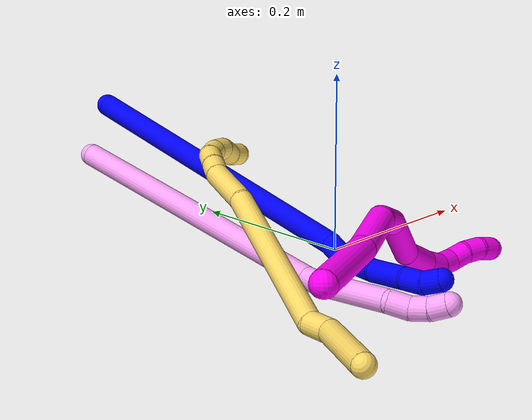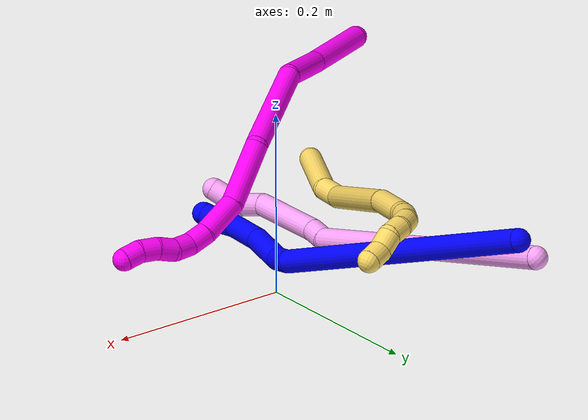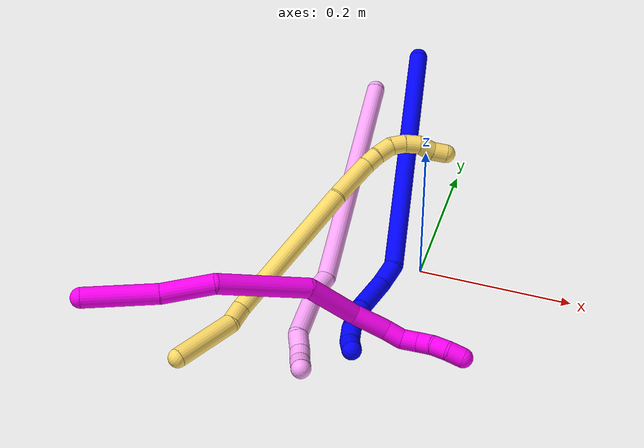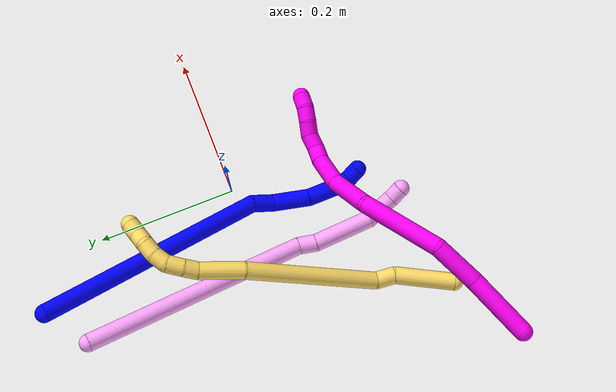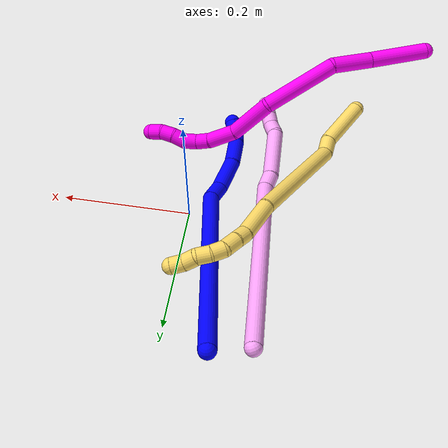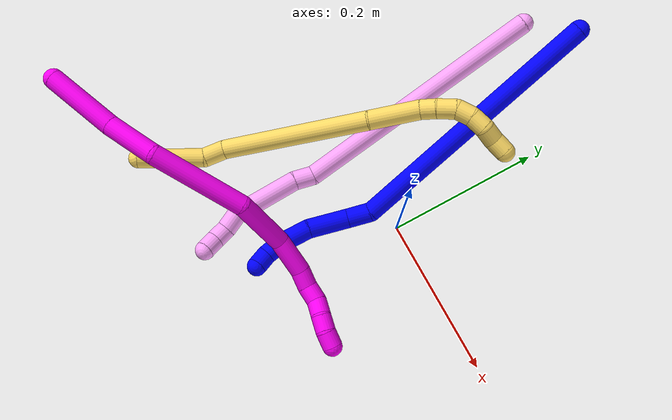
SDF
<sdf version="1.7">
 <world name="default">
  <model name="1">
   <static>0</static>
   <link name="1">
    <collision name="collision-cylinder-e_1_1_4">
     <pose>0.025386 -0.163034 0.0253 1.41684 0.152669 0.130872</pose>
     <geometry><cylinder><radius>0.0125</radius><length>0.333854</length></cylinder></geometry>
     <surface>
      <friction><ode><mu>1.16</mu><mu2>1.16</mu2><slip1>0</slip1><slip2>0</slip2></ode></friction>
      <contact><ode><kp>1e+06</kp><kd>1</kd><max_vel>0</max_vel><min_depth>0.001</min_depth></ode></contact>
     </surface>
    </collision>
    <visual name="visual-cylinder-e_1_1_4">
     <pose>0.025386 -0.163034 0.0253 1.41684 0.152669 0.130872</pose>
     <geometry><cylinder><radius>0.0125</radius><length>0.333854</length></cylinder></geometry>
     <material><ambient>0 0 1 1</ambient></material>
    </visual>
    <collision name="collision-cylinder-e_2_4_5">
     <pose>0.059387 -0.338659 0.052975 1.38444 0.591963 0.495259</pose>
     <geometry><cylinder><radius>0.0125</radius><length>0.030882</length></cylinder></geometry>
     <surface>
      <friction><ode><mu>1.16</mu><mu2>1.16</mu2><slip1>0</slip1><slip2>0</slip2></ode></friction>
      <contact><ode><kp>1e+06</kp><kd>1</kd><max_vel>0</max_vel><min_depth>0.001</min_depth></ode></contact>
     </surface>
    </collision>
    <visual name="visual-cylinder-e_2_4_5">
     <pose>0.059387 -0.338659 0.052975 1.38444 0.591963 0.495259</pose>
     <geometry><cylinder><radius>0.0125</radius><length>0.030882</length></cylinder></geometry>
     <material><ambient>0 0 1 1</ambient></material>
    </visual>
    <collision name="collision-cylinder-e_3_5_6">
     <pose>0.082614 -0.372696 0.050479 1.79409 0.586405 0.723054</pose>
     <geometry><cylinder><radius>0.0125</radius><length>0.052804</length></cylinder></geometry>
     <surface>
      <friction><ode><mu>1.16</mu><mu2>1.16</mu2><slip1>0</slip1><slip2>0</slip2></ode></friction>
      <contact><ode><kp>1e+06</kp><kd>1</kd><max_vel>0</max_vel><min_depth>0.001</min_depth></ode></contact>
     </surface>
    </collision>
    <visual name="visual-cylinder-e_3_5_6">
     <pose>0.082614 -0.372696 0.050479 1.79409 0.586405 0.723054</pose>
     <geometry><cylinder><radius>0.0125</radius><length>0.052804</length></cylinder></geometry>
     <material><ambient>0 0 1 1</ambient></material>
    </visual>
    <collision name="collision-cylinder-e_4_6_7">
     <pose>0.104323 -0.412543 0.041145 1.80881 0.358726 0.453199</pose>
     <geometry><cylinder><radius>0.0125</radius><length>0.040444</length></cylinder></geometry>
     <surface>
      <friction><ode><mu>1.16</mu><mu2>1.16</mu2><slip1>0</slip1><slip2>0</slip2></ode></friction>
      <contact><ode><kp>1e+06</kp><kd>1</kd><max_vel>0</max_vel><min_depth>0.001</min_depth></ode></contact>
     </surface>
    </collision>
    <visual name="visual-cylinder-e_4_6_7">
     <pose>0.104323 -0.412543 0.041145 1.80881 0.358726 0.453199</pose>
     <geometry><cylinder><radius>0.0125</radius><length>0.040444</length></cylinder></geometry>
     <material><ambient>0 0 1 1</ambient></material>
    </visual>
    <collision name="collision-cylinder-e_5_7_8">
     <pose>0.113199 -0.441605 0.035002 1.72699 0.163077 0.190612</pose>
     <geometry><cylinder><radius>0.0125</radius><length>0.021876</length></cylinder></geometry>
     <surface>
      <friction><ode><mu>1.16</mu><mu2>1.16</mu2><slip1>0</slip1><slip2>0</slip2></ode></friction>
      <contact><ode><kp>1e+06</kp><kd>1</kd><max_vel>0</max_vel><min_depth>0.001</min_depth></ode></contact>
     </surface>
    </collision>
    <visual name="visual-cylinder-e_5_7_8">
     <pose>0.113199 -0.441605 0.035002 1.72699 0.163077 0.190612</pose>
     <geometry><cylinder><radius>0.0125</radius><length>0.021876</length></cylinder></geometry>
     <material><ambient>0 0 1 1</ambient></material>
    </visual>
    <collision name="collision-cylinder-e_6_8_2">
     <pose>0.114466 -0.461071 0.028461 2.07541 -0.050559 -0.085649</pose>
     <geometry><cylinder><radius>0.0125</radius><length>0.02014</length></cylinder></geometry>
     <surface>
      <friction><ode><mu>1.16</mu><mu2>1.16</mu2><slip1>0</slip1><slip2>0</slip2></ode></friction>
      <contact><ode><kp>1e+06</kp><kd>1</kd><max_vel>0</max_vel><min_depth>0.001</min_depth></ode></contact>
     </surface>
    </collision>
    <visual name="visual-cylinder-e_6_8_2">
     <pose>0.114466 -0.461071 0.028461 2.07541 -0.050559 -0.085649</pose>
     <geometry><cylinder><radius>0.0125</radius><length>0.02014</length></cylinder></geometry>
     <material><ambient>0 0 1 1</ambient></material>
    </visual>
    <collision name="collision-sphere-2">
     <pose>0.113957 -0.469874 0.023598 0 -0 0</pose>
     <geometry><sphere><radius>0.0125</radius></sphere></geometry>
     <surface>
      <friction><ode><mu>1.16</mu><mu2>1.16</mu2><slip1>0</slip1><slip2>0</slip2></ode></friction>
      <contact><ode><kp>1e+06</kp><kd>1</kd><max_vel>0</max_vel><min_depth>0.001</min_depth></ode></contact>
     </surface>
    </collision>
    <visual name="visual-sphere-2">
     <pose>0.113957 -0.469874 0.023598 0 -0 0</pose>
     <geometry><sphere><radius>0.0125</radius></sphere></geometry>
     <material><ambient>0 0 1 1</ambient></material>
    </visual>
    <collision name="collision-sphere-4">
     <pose>0.050771 -0.326067 0.050601 0 -0 0</pose>
     <geometry><sphere><radius>0.0125</radius></sphere></geometry>
     <surface>
      <friction><ode><mu>1.16</mu><mu2>1.16</mu2><slip1>0</slip1><slip2>0</slip2></ode></friction>
      <contact><ode><kp>1e+06</kp><kd>1</kd><max_vel>0</max_vel><min_depth>0.001</min_depth></ode></contact>
     </surface>
    </collision>
    <visual name="visual-sphere-4">
     <pose>0.050771 -0.326067 0.050601 0 -0 0</pose>
     <geometry><sphere><radius>0.0125</radius></sphere></geometry>
     <material><ambient>0 0 1 1</ambient></material>
    </visual>
    <collision name="collision-sphere-1">
     <geometry><sphere><radius>0.0125</radius></sphere></geometry>
     <surface>
      <friction><ode><mu>1.16</mu><mu2>1.16</mu2><slip1>0</slip1><slip2>0</slip2></ode></friction>
      <contact><ode><kp>1e+06</kp><kd>1</kd><max_vel>0</max_vel><min_depth>0.001</min_depth></ode></contact>
     </surface>
    </collision>
    <visual name="visual-sphere-1">
     <geometry><sphere><radius>0.0125</radius></sphere></geometry>
     <material><ambient>0 0 1 1</ambient></material>
    </visual>
    <collision name="collision-sphere-8">
     <pose>0.114975 -0.452267 0.033323 0 -0 0</pose>
     <geometry><sphere><radius>0.0125</radius></sphere></geometry>
     <surface>
      <friction><ode><mu>1.16</mu><mu2>1.16</mu2><slip1>0</slip1><slip2>0</slip2></ode></friction>
      <contact><ode><kp>1e+06</kp><kd>1</kd><max_vel>0</max_vel><min_depth>0.001</min_depth></ode></contact>
     </surface>
    </collision>
    <visual name="visual-sphere-8">
     <pose>0.114975 -0.452267 0.033323 0 -0 0</pose>
     <geometry><sphere><radius>0.0125</radius></sphere></geometry>
     <material><ambient>0 0 1 1</ambient></material>
    </visual>
    <collision name="collision-sphere-5">
     <pose>0.068003 -0.351251 0.055349 0 -0 0</pose>
     <geometry><sphere><radius>0.0125</radius></sphere></geometry>
     <surface>
      <friction><ode><mu>1.16</mu><mu2>1.16</mu2><slip1>0</slip1><slip2>0</slip2></ode></friction>
      <contact><ode><kp>1e+06</kp><kd>1</kd><max_vel>0</max_vel><min_depth>0.001</min_depth></ode></contact>
     </surface>
    </collision>
    <visual name="visual-sphere-5">
     <pose>0.068003 -0.351251 0.055349 0 -0 0</pose>
     <geometry><sphere><radius>0.0125</radius></sphere></geometry>
     <material><ambient>0 0 1 1</ambient></material>
    </visual>
    <collision name="collision-sphere-6">
     <pose>0.097224 -0.394142 0.045609 0 -0 0</pose>
     <geometry><sphere><radius>0.0125</radius></sphere></geometry>
     <surface>
      <friction><ode><mu>1.16</mu><mu2>1.16</mu2><slip1>0</slip1><slip2>0</slip2></ode></friction>
      <contact><ode><kp>1e+06</kp><kd>1</kd><max_vel>0</max_vel><min_depth>0.001</min_depth></ode></contact>
     </surface>
    </collision>
    <visual name="visual-sphere-6">
     <pose>0.097224 -0.394142 0.045609 0 -0 0</pose>
     <geometry><sphere><radius>0.0125</radius></sphere></geometry>
     <material><ambient>0 0 1 1</ambient></material>
    </visual>
    <collision name="collision-sphere-7">
     <pose>0.111423 -0.430944 0.036681 0 -0 0</pose>
     <geometry><sphere><radius>0.0125</radius></sphere></geometry>
     <surface>
      <friction><ode><mu>1.16</mu><mu2>1.16</mu2><slip1>0</slip1><slip2>0</slip2></ode></friction>
      <contact><ode><kp>1e+06</kp><kd>1</kd><max_vel>0</max_vel><min_depth>0.001</min_depth></ode></contact>
     </surface>
    </collision>
    <visual name="visual-sphere-7">
     <pose>0.111423 -0.430944 0.036681 0 -0 0</pose>
     <geometry><sphere><radius>0.0125</radius></sphere></geometry>
     <material><ambient>0 0 1 1</ambient></material>
    </visual>
    <inertial>
     <pose>0.047345 -0.240399 0.031502 0 -0 0</pose>
     <mass>0.5</mass>
     <inertia>
      <ixx>0.003495</ixx>
      <ixy>0</ixy>
      <ixz>0</ixz>
      <iyy>0.000915</iyy>
      <iyz>0</iyz>
      <izz>0.002581</izz>
     </inertia>
    </inertial>
   </link>
   <pose>-0.085438 0.288505 0.13332 2.93434 -0.064028 -2.78097</pose>
  </model>
  <model name="4">
   <static>0</static>
   <link name="4">
    <collision name="collision-cylinder-e_1_1_4">
     <pose>0.017909 -0.148544 0.064642 1.16034 0.110103 0.072204</pose>
     <geometry><cylinder><radius>0.0125</radius><length>0.325973</length></cylinder></geometry>
     <surface>
      <friction><ode><mu>1.16</mu><mu2>1.16</mu2><slip1>0</slip1><slip2>0</slip2></ode></friction>
      <contact><ode><kp>1e+06</kp><kd>1</kd><max_vel>0</max_vel><min_depth>0.001</min_depth></ode></contact>
     </surface>
    </collision>
    <visual name="visual-cylinder-e_1_1_4">
     <pose>0.017909 -0.148544 0.064642 1.16034 0.110103 0.072204</pose>
     <geometry><cylinder><radius>0.0125</radius><length>0.325973</length></cylinder></geometry>
     <material><ambient>1 0.65098 0.996078 1</ambient></material>
    </visual>
    <collision name="collision-cylinder-e_2_4_5">
     <pose>0.032358 -0.307854 0.135327 1.05925 -0.273269 -0.160632</pose>
     <geometry><cylinder><radius>0.0125</radius><length>0.025644</length></cylinder></geometry>
     <surface>
      <friction><ode><mu>1.16</mu><mu2>1.16</mu2><slip1>0</slip1><slip2>0</slip2></ode></friction>
      <contact><ode><kp>1e+06</kp><kd>1</kd><max_vel>0</max_vel><min_depth>0.001</min_depth></ode></contact>
     </surface>
    </collision>
    <visual name="visual-cylinder-e_2_4_5">
     <pose>0.032358 -0.307854 0.135327 1.05925 -0.273269 -0.160632</pose>
     <geometry><cylinder><radius>0.0125</radius><length>0.025644</length></cylinder></geometry>
     <material><ambient>1 0.65098 0.996078 1</ambient></material>
    </visual>
    <collision name="collision-cylinder-e_3_5_6">
     <pose>0.026417 -0.352515 0.166491 0.933008 -0.058729 -0.029581</pose>
     <geometry><cylinder><radius>0.0125</radius><length>0.084524</length></cylinder></geometry>
     <surface>
      <friction><ode><mu>1.16</mu><mu2>1.16</mu2><slip1>0</slip1><slip2>0</slip2></ode></friction>
      <contact><ode><kp>1e+06</kp><kd>1</kd><max_vel>0</max_vel><min_depth>0.001</min_depth></ode></contact>
     </surface>
    </collision>
    <visual name="visual-cylinder-e_3_5_6">
     <pose>0.026417 -0.352515 0.166491 0.933008 -0.058729 -0.029581</pose>
     <geometry><cylinder><radius>0.0125</radius><length>0.084524</length></cylinder></geometry>
     <material><ambient>1 0.65098 0.996078 1</ambient></material>
    </visual>
    <collision name="collision-cylinder-e_4_6_7">
     <pose>0.028411 -0.395431 0.197957 0.957718 0.385485 0.201955</pose>
     <geometry><cylinder><radius>0.0125</radius><length>0.023804</length></cylinder></geometry>
     <surface>
      <friction><ode><mu>1.16</mu><mu2>1.16</mu2><slip1>0</slip1><slip2>0</slip2></ode></friction>
      <contact><ode><kp>1e+06</kp><kd>1</kd><max_vel>0</max_vel><min_depth>0.001</min_depth></ode></contact>
     </surface>
    </collision>
    <visual name="visual-cylinder-e_4_6_7">
     <pose>0.028411 -0.395431 0.197957 0.957718 0.385485 0.201955</pose>
     <geometry><cylinder><radius>0.0125</radius><length>0.023804</length></cylinder></geometry>
     <material><ambient>1 0.65098 0.996078 1</ambient></material>
    </visual>
    <collision name="collision-cylinder-e_5_7_8">
     <pose>0.034183 -0.410806 0.211917 0.695494 0.130005 0.047182</pose>
     <geometry><cylinder><radius>0.0125</radius><length>0.020003</length></cylinder></geometry>
     <surface>
      <friction><ode><mu>1.16</mu><mu2>1.16</mu2><slip1>0</slip1><slip2>0</slip2></ode></friction>
      <contact><ode><kp>1e+06</kp><kd>1</kd><max_vel>0</max_vel><min_depth>0.001</min_depth></ode></contact>
     </surface>
    </collision>
    <visual name="visual-cylinder-e_5_7_8">
     <pose>0.034183 -0.410806 0.211917 0.695494 0.130005 0.047182</pose>
     <geometry><cylinder><radius>0.0125</radius><length>0.020003</length></cylinder></geometry>
     <material><ambient>1 0.65098 0.996078 1</ambient></material>
    </visual>
    <collision name="collision-cylinder-e_6_8_2">
     <pose>0.036217 -0.421692 0.228443 0.47045 0.07361 0.017649</pose>
     <geometry><cylinder><radius>0.0125</radius><length>0.020051</length></cylinder></geometry>
     <surface>
      <friction><ode><mu>1.16</mu><mu2>1.16</mu2><slip1>0</slip1><slip2>0</slip2></ode></friction>
      <contact><ode><kp>1e+06</kp><kd>1</kd><max_vel>0</max_vel><min_depth>0.001</min_depth></ode></contact>
     </surface>
    </collision>
    <visual name="visual-cylinder-e_6_8_2">
     <pose>0.036217 -0.421692 0.228443 0.47045 0.07361 0.017649</pose>
     <geometry><cylinder><radius>0.0125</radius><length>0.020051</length></cylinder></geometry>
     <material><ambient>1 0.65098 0.996078 1</ambient></material>
    </visual>
    <collision name="collision-sphere-2">
     <pose>0.036955 -0.426224 0.237355 0 -0 0</pose>
     <geometry><sphere><radius>0.0125</radius></sphere></geometry>
     <surface>
      <friction><ode><mu>1.16</mu><mu2>1.16</mu2><slip1>0</slip1><slip2>0</slip2></ode></friction>
      <contact><ode><kp>1e+06</kp><kd>1</kd><max_vel>0</max_vel><min_depth>0.001</min_depth></ode></contact>
     </surface>
    </collision>
    <visual name="visual-sphere-2">
     <pose>0.036955 -0.426224 0.237355 0 -0 0</pose>
     <geometry><sphere><radius>0.0125</radius></sphere></geometry>
     <material><ambient>1 0.65098 0.996078 1</ambient></material>
    </visual>
    <collision name="collision-sphere-4">
     <pose>0.035818 -0.297088 0.129283 0 -0 0</pose>
     <geometry><sphere><radius>0.0125</radius></sphere></geometry>
     <surface>
      <friction><ode><mu>1.16</mu><mu2>1.16</mu2><slip1>0</slip1><slip2>0</slip2></ode></friction>
      <contact><ode><kp>1e+06</kp><kd>1</kd><max_vel>0</max_vel><min_depth>0.001</min_depth></ode></contact>
     </surface>
    </collision>
    <visual name="visual-sphere-4">
     <pose>0.035818 -0.297088 0.129283 0 -0 0</pose>
     <geometry><sphere><radius>0.0125</radius></sphere></geometry>
     <material><ambient>1 0.65098 0.996078 1</ambient></material>
    </visual>
    <collision name="collision-sphere-1">
     <geometry><sphere><radius>0.0125</radius></sphere></geometry>
     <surface>
      <friction><ode><mu>1.16</mu><mu2>1.16</mu2><slip1>0</slip1><slip2>0</slip2></ode></friction>
      <contact><ode><kp>1e+06</kp><kd>1</kd><max_vel>0</max_vel><min_depth>0.001</min_depth></ode></contact>
     </surface>
    </collision>
    <visual name="visual-sphere-1">
     <geometry><sphere><radius>0.0125</radius></sphere></geometry>
     <material><ambient>1 0.65098 0.996078 1</ambient></material>
    </visual>
    <collision name="collision-sphere-8">
     <pose>0.03548 -0.41716 0.219531 0 -0 0</pose>
     <geometry><sphere><radius>0.0125</radius></sphere></geometry>
     <surface>
      <friction><ode><mu>1.16</mu><mu2>1.16</mu2><slip1>0</slip1><slip2>0</slip2></ode></friction>
      <contact><ode><kp>1e+06</kp><kd>1</kd><max_vel>0</max_vel><min_depth>0.001</min_depth></ode></contact>
     </surface>
    </collision>
    <visual name="visual-sphere-8">
     <pose>0.03548 -0.41716 0.219531 0 -0 0</pose>
     <geometry><sphere><radius>0.0125</radius></sphere></geometry>
     <material><ambient>1 0.65098 0.996078 1</ambient></material>
    </visual>
    <collision name="collision-sphere-5">
     <pose>0.028897 -0.31862 0.141371 0 -0 0</pose>
     <geometry><sphere><radius>0.0125</radius></sphere></geometry>
     <surface>
      <friction><ode><mu>1.16</mu><mu2>1.16</mu2><slip1>0</slip1><slip2>0</slip2></ode></friction>
      <contact><ode><kp>1e+06</kp><kd>1</kd><max_vel>0</max_vel><min_depth>0.001</min_depth></ode></contact>
     </surface>
    </collision>
    <visual name="visual-sphere-5">
     <pose>0.028897 -0.31862 0.141371 0 -0 0</pose>
     <geometry><sphere><radius>0.0125</radius></sphere></geometry>
     <material><ambient>1 0.65098 0.996078 1</ambient></material>
    </visual>
    <collision name="collision-sphere-6">
     <pose>0.023936 -0.38641 0.191611 0 -0 0</pose>
     <geometry><sphere><radius>0.0125</radius></sphere></geometry>
     <surface>
      <friction><ode><mu>1.16</mu><mu2>1.16</mu2><slip1>0</slip1><slip2>0</slip2></ode></friction>
      <contact><ode><kp>1e+06</kp><kd>1</kd><max_vel>0</max_vel><min_depth>0.001</min_depth></ode></contact>
     </surface>
    </collision>
    <visual name="visual-sphere-6">
     <pose>0.023936 -0.38641 0.191611 0 -0 0</pose>
     <geometry><sphere><radius>0.0125</radius></sphere></geometry>
     <material><ambient>1 0.65098 0.996078 1</ambient></material>
    </visual>
    <collision name="collision-sphere-7">
     <pose>0.032887 -0.404451 0.204303 0 -0 0</pose>
     <geometry><sphere><radius>0.0125</radius></sphere></geometry>
     <surface>
      <friction><ode><mu>1.16</mu><mu2>1.16</mu2><slip1>0</slip1><slip2>0</slip2></ode></friction>
      <contact><ode><kp>1e+06</kp><kd>1</kd><max_vel>0</max_vel><min_depth>0.001</min_depth></ode></contact>
     </surface>
    </collision>
    <visual name="visual-sphere-7">
     <pose>0.032887 -0.404451 0.204303 0 -0 0</pose>
     <geometry><sphere><radius>0.0125</radius></sphere></geometry>
     <material><ambient>1 0.65098 0.996078 1</ambient></material>
    </visual>
    <inertial>
     <pose>0.021974 -0.224396 0.104292 0 -0 0</pose>
     <mass>0.5</mass>
     <inertia>
      <ixx>0.003144</ixx>
      <ixy>0</ixy>
      <ixz>0</ixz>
      <iyy>0.001385</iyy>
      <iyz>0</iyz>
      <izz>0.002393</izz>
     </inertia>
    </inertial>
   </link>
   <pose>-0.138283 0.254445 0.089044 0.623965 0.514666 0.095925</pose>
  </model>
  <model name="5">
   <static>0</static>
   <link name="5">
    <collision name="collision-cylinder-e_1_1_4">
     <pose>0.013044 0.035104 0.020319 -1.0461 0.31114 -0.18038</pose>
     <geometry><cylinder><radius>0.0125</radius><length>0.085211</length></cylinder></geometry>
     <surface>
      <friction><ode><mu>1.16</mu><mu2>1.16</mu2><slip1>0</slip1><slip2>0</slip2></ode></friction>
      <contact><ode><kp>1e+06</kp><kd>1</kd><max_vel>0</max_vel><min_depth>0.001</min_depth></ode></contact>
     </surface>
    </collision>
    <visual name="visual-cylinder-e_1_1_4">
     <pose>0.013044 0.035104 0.020319 -1.0461 0.31114 -0.18038</pose>
     <geometry><cylinder><radius>0.0125</radius><length>0.085211</length></cylinder></geometry>
     <material><ambient>1 0.858824 0.4 1</ambient></material>
    </visual>
    <collision name="collision-cylinder-e_2_4_5">
     <pose>0.034379 0.0813 0.043648 -1.30581 0.624935 -0.484433</pose>
     <geometry><cylinder><radius>0.0125</radius><length>0.028345</length></cylinder></geometry>
     <surface>
      <friction><ode><mu>1.16</mu><mu2>1.16</mu2><slip1>0</slip1><slip2>0</slip2></ode></friction>
      <contact><ode><kp>1e+06</kp><kd>1</kd><max_vel>0</max_vel><min_depth>0.001</min_depth></ode></contact>
     </surface>
    </collision>
    <visual name="visual-cylinder-e_2_4_5">
     <pose>0.034379 0.0813 0.043648 -1.30581 0.624935 -0.484433</pose>
     <geometry><cylinder><radius>0.0125</radius><length>0.028345</length></cylinder></geometry>
     <material><ambient>1 0.858824 0.4 1</ambient></material>
    </visual>
    <collision name="collision-cylinder-e_3_5_6">
     <pose>0.05795 0.188664 0.062395 -1.40877 0.155381 -0.132118</pose>
     <geometry><cylinder><radius>0.0125</radius><length>0.197477</length></cylinder></geometry>
     <surface>
      <friction><ode><mu>1.16</mu><mu2>1.16</mu2><slip1>0</slip1><slip2>0</slip2></ode></friction>
      <contact><ode><kp>1e+06</kp><kd>1</kd><max_vel>0</max_vel><min_depth>0.001</min_depth></ode></contact>
     </surface>
    </collision>
    <visual name="visual-cylinder-e_3_5_6">
     <pose>0.05795 0.188664 0.062395 -1.40877 0.155381 -0.132118</pose>
     <geometry><cylinder><radius>0.0125</radius><length>0.197477</length></cylinder></geometry>
     <material><ambient>1 0.858824 0.4 1</ambient></material>
    </visual>
    <collision name="collision-cylinder-e_4_6_7">
     <pose>0.083036 0.314414 0.086207 -1.30343 0.310414 -0.237616</pose>
     <geometry><cylinder><radius>0.0125</radius><length>0.064199</length></cylinder></geometry>
     <surface>
      <friction><ode><mu>1.16</mu><mu2>1.16</mu2><slip1>0</slip1><slip2>0</slip2></ode></friction>
      <contact><ode><kp>1e+06</kp><kd>1</kd><max_vel>0</max_vel><min_depth>0.001</min_depth></ode></contact>
     </surface>
    </collision>
    <visual name="visual-cylinder-e_4_6_7">
     <pose>0.083036 0.314414 0.086207 -1.30343 0.310414 -0.237616</pose>
     <geometry><cylinder><radius>0.0125</radius><length>0.064199</length></cylinder></geometry>
     <material><ambient>1 0.858824 0.4 1</ambient></material>
    </visual>
    <collision name="collision-cylinder-e_5_7_8">
     <pose>0.093697 0.353573 0.097078 -1.28951 0.084832 -0.063808</pose>
     <geometry><cylinder><radius>0.0125</radius><length>0.020223</length></cylinder></geometry>
     <surface>
      <friction><ode><mu>1.16</mu><mu2>1.16</mu2><slip1>0</slip1><slip2>0</slip2></ode></friction>
      <contact><ode><kp>1e+06</kp><kd>1</kd><max_vel>0</max_vel><min_depth>0.001</min_depth></ode></contact>
     </surface>
    </collision>
    <visual name="visual-cylinder-e_5_7_8">
     <pose>0.093697 0.353573 0.097078 -1.28951 0.084832 -0.063808</pose>
     <geometry><cylinder><radius>0.0125</radius><length>0.020223</length></cylinder></geometry>
     <material><ambient>1 0.858824 0.4 1</ambient></material>
    </visual>
    <collision name="collision-cylinder-e_6_8_9">
     <pose>0.095944 0.374191 0.104728 -1.15321 0.115654 -0.075261</pose>
     <geometry><cylinder><radius>0.0125</radius><length>0.024095</length></cylinder></geometry>
     <surface>
      <friction><ode><mu>1.16</mu><mu2>1.16</mu2><slip1>0</slip1><slip2>0</slip2></ode></friction>
      <contact><ode><kp>1e+06</kp><kd>1</kd><max_vel>0</max_vel><min_depth>0.001</min_depth></ode></contact>
     </surface>
    </collision>
    <visual name="visual-cylinder-e_6_8_9">
     <pose>0.095944 0.374191 0.104728 -1.15321 0.115654 -0.075261</pose>
     <geometry><cylinder><radius>0.0125</radius><length>0.024095</length></cylinder></geometry>
     <material><ambient>1 0.858824 0.4 1</ambient></material>
    </visual>
    <collision name="collision-cylinder-e_7_9_10">
     <pose>0.095778 0.39236 0.116424 -0.812958 -0.155121 0.066881</pose>
     <geometry><cylinder><radius>0.0125</radius><length>0.020152</length></cylinder></geometry>
     <surface>
      <friction><ode><mu>1.16</mu><mu2>1.16</mu2><slip1>0</slip1><slip2>0</slip2></ode></friction>
      <contact><ode><kp>1e+06</kp><kd>1</kd><max_vel>0</max_vel><min_depth>0.001</min_depth></ode></contact>
     </surface>
    </collision>
    <visual name="visual-cylinder-e_7_9_10">
     <pose>0.095778 0.39236 0.116424 -0.812958 -0.155121 0.066881</pose>
     <geometry><cylinder><radius>0.0125</radius><length>0.020152</length></cylinder></geometry>
     <material><ambient>1 0.858824 0.4 1</ambient></material>
    </visual>
    <collision name="collision-cylinder-e_8_10_11">
     <pose>0.0913 0.404785 0.131325 -0.572621 -0.295767 0.087658</pose>
     <geometry><cylinder><radius>0.0125</radius><length>0.020045</length></cylinder></geometry>
     <surface>
      <friction><ode><mu>1.16</mu><mu2>1.16</mu2><slip1>0</slip1><slip2>0</slip2></ode></friction>
      <contact><ode><kp>1e+06</kp><kd>1</kd><max_vel>0</max_vel><min_depth>0.001</min_depth></ode></contact>
     </surface>
    </collision>
    <visual name="visual-cylinder-e_8_10_11">
     <pose>0.0913 0.404785 0.131325 -0.572621 -0.295767 0.087658</pose>
     <geometry><cylinder><radius>0.0125</radius><length>0.020045</length></cylinder></geometry>
     <material><ambient>1 0.858824 0.4 1</ambient></material>
    </visual>
    <collision name="collision-cylinder-e_9_11_12">
     <pose>0.087986 0.41193 0.149291 -0.194349 -0.038884 0.003791</pose>
     <geometry><cylinder><radius>0.0125</radius><length>0.020211</length></cylinder></geometry>
     <surface>
      <friction><ode><mu>1.16</mu><mu2>1.16</mu2><slip1>0</slip1><slip2>0</slip2></ode></friction>
      <contact><ode><kp>1e+06</kp><kd>1</kd><max_vel>0</max_vel><min_depth>0.001</min_depth></ode></contact>
     </surface>
    </collision>
    <visual name="visual-cylinder-e_9_11_12">
     <pose>0.087986 0.41193 0.149291 -0.194349 -0.038884 0.003791</pose>
     <geometry><cylinder><radius>0.0125</radius><length>0.020211</length></cylinder></geometry>
     <material><ambient>1 0.858824 0.4 1</ambient></material>
    </visual>
    <collision name="collision-cylinder-e_10_12_2">
     <pose>0.085019 0.418206 0.167863 -0.463042 -0.259731 0.061558</pose>
     <geometry><cylinder><radius>0.0125</radius><length>0.020042</length></cylinder></geometry>
     <surface>
      <friction><ode><mu>1.16</mu><mu2>1.16</mu2><slip1>0</slip1><slip2>0</slip2></ode></friction>
      <contact><ode><kp>1e+06</kp><kd>1</kd><max_vel>0</max_vel><min_depth>0.001</min_depth></ode></contact>
     </surface>
    </collision>
    <visual name="visual-cylinder-e_10_12_2">
     <pose>0.085019 0.418206 0.167863 -0.463042 -0.259731 0.061558</pose>
     <geometry><cylinder><radius>0.0125</radius><length>0.020042</length></cylinder></geometry>
     <material><ambient>1 0.858824 0.4 1</ambient></material>
    </visual>
    <collision name="collision-sphere-2">
     <pose>0.082446 0.422532 0.176529 0 -0 0</pose>
     <geometry><sphere><radius>0.0125</radius></sphere></geometry>
     <surface>
      <friction><ode><mu>1.16</mu><mu2>1.16</mu2><slip1>0</slip1><slip2>0</slip2></ode></friction>
      <contact><ode><kp>1e+06</kp><kd>1</kd><max_vel>0</max_vel><min_depth>0.001</min_depth></ode></contact>
     </surface>
    </collision>
    <visual name="visual-sphere-2">
     <pose>0.082446 0.422532 0.176529 0 -0 0</pose>
     <geometry><sphere><radius>0.0125</radius></sphere></geometry>
     <material><ambient>1 0.858824 0.4 1</ambient></material>
    </visual>
    <collision name="collision-sphere-12">
     <pose>0.087593 0.41388 0.159198 0 -0 0</pose>
     <geometry><sphere><radius>0.0125</radius></sphere></geometry>
     <surface>
      <friction><ode><mu>1.16</mu><mu2>1.16</mu2><slip1>0</slip1><slip2>0</slip2></ode></friction>
      <contact><ode><kp>1e+06</kp><kd>1</kd><max_vel>0</max_vel><min_depth>0.001</min_depth></ode></contact>
     </surface>
    </collision>
    <visual name="visual-sphere-12">
     <pose>0.087593 0.41388 0.159198 0 -0 0</pose>
     <geometry><sphere><radius>0.0125</radius></sphere></geometry>
     <material><ambient>1 0.858824 0.4 1</ambient></material>
    </visual>
    <collision name="collision-sphere-11">
     <pose>0.088379 0.40998 0.139383 0 -0 0</pose>
     <geometry><sphere><radius>0.0125</radius></sphere></geometry>
     <surface>
      <friction><ode><mu>1.16</mu><mu2>1.16</mu2><slip1>0</slip1><slip2>0</slip2></ode></friction>
      <contact><ode><kp>1e+06</kp><kd>1</kd><max_vel>0</max_vel><min_depth>0.001</min_depth></ode></contact>
     </surface>
    </collision>
    <visual name="visual-sphere-11">
     <pose>0.088379 0.40998 0.139383 0 -0 0</pose>
     <geometry><sphere><radius>0.0125</radius></sphere></geometry>
     <material><ambient>1 0.858824 0.4 1</ambient></material>
    </visual>
    <collision name="collision-sphere-10">
     <pose>0.094221 0.399591 0.123267 0 -0 0</pose>
     <geometry><sphere><radius>0.0125</radius></sphere></geometry>
     <surface>
      <friction><ode><mu>1.16</mu><mu2>1.16</mu2><slip1>0</slip1><slip2>0</slip2></ode></friction>
      <contact><ode><kp>1e+06</kp><kd>1</kd><max_vel>0</max_vel><min_depth>0.001</min_depth></ode></contact>
     </surface>
    </collision>
    <visual name="visual-sphere-10">
     <pose>0.094221 0.399591 0.123267 0 -0 0</pose>
     <geometry><sphere><radius>0.0125</radius></sphere></geometry>
     <material><ambient>1 0.858824 0.4 1</ambient></material>
    </visual>
    <collision name="collision-sphere-9">
     <pose>0.097335 0.385129 0.109582 0 -0 0</pose>
     <geometry><sphere><radius>0.0125</radius></sphere></geometry>
     <surface>
      <friction><ode><mu>1.16</mu><mu2>1.16</mu2><slip1>0</slip1><slip2>0</slip2></ode></friction>
      <contact><ode><kp>1e+06</kp><kd>1</kd><max_vel>0</max_vel><min_depth>0.001</min_depth></ode></contact>
     </surface>
    </collision>
    <visual name="visual-sphere-9">
     <pose>0.097335 0.385129 0.109582 0 -0 0</pose>
     <geometry><sphere><radius>0.0125</radius></sphere></geometry>
     <material><ambient>1 0.858824 0.4 1</ambient></material>
    </visual>
    <collision name="collision-sphere-4">
     <pose>0.026087 0.070207 0.040637 0 -0 0</pose>
     <geometry><sphere><radius>0.0125</radius></sphere></geometry>
     <surface>
      <friction><ode><mu>1.16</mu><mu2>1.16</mu2><slip1>0</slip1><slip2>0</slip2></ode></friction>
      <contact><ode><kp>1e+06</kp><kd>1</kd><max_vel>0</max_vel><min_depth>0.001</min_depth></ode></contact>
     </surface>
    </collision>
    <visual name="visual-sphere-4">
     <pose>0.026087 0.070207 0.040637 0 -0 0</pose>
     <geometry><sphere><radius>0.0125</radius></sphere></geometry>
     <material><ambient>1 0.858824 0.4 1</ambient></material>
    </visual>
    <collision name="collision-sphere-1">
     <geometry><sphere><radius>0.0125</radius></sphere></geometry>
     <surface>
      <friction><ode><mu>1.16</mu><mu2>1.16</mu2><slip1>0</slip1><slip2>0</slip2></ode></friction>
      <contact><ode><kp>1e+06</kp><kd>1</kd><max_vel>0</max_vel><min_depth>0.001</min_depth></ode></contact>
     </surface>
    </collision>
    <visual name="visual-sphere-1">
     <geometry><sphere><radius>0.0125</radius></sphere></geometry>
     <material><ambient>1 0.858824 0.4 1</ambient></material>
    </visual>
    <collision name="collision-sphere-8">
     <pose>0.094554 0.363252 0.099875 0 -0 0</pose>
     <geometry><sphere><radius>0.0125</radius></sphere></geometry>
     <surface>
      <friction><ode><mu>1.16</mu><mu2>1.16</mu2><slip1>0</slip1><slip2>0</slip2></ode></friction>
      <contact><ode><kp>1e+06</kp><kd>1</kd><max_vel>0</max_vel><min_depth>0.001</min_depth></ode></contact>
     </surface>
    </collision>
    <visual name="visual-sphere-8">
     <pose>0.094554 0.363252 0.099875 0 -0 0</pose>
     <geometry><sphere><radius>0.0125</radius></sphere></geometry>
     <material><ambient>1 0.858824 0.4 1</ambient></material>
    </visual>
    <collision name="collision-sphere-5">
     <pose>0.04267 0.092393 0.046658 0 -0 0</pose>
     <geometry><sphere><radius>0.0125</radius></sphere></geometry>
     <surface>
      <friction><ode><mu>1.16</mu><mu2>1.16</mu2><slip1>0</slip1><slip2>0</slip2></ode></friction>
      <contact><ode><kp>1e+06</kp><kd>1</kd><max_vel>0</max_vel><min_depth>0.001</min_depth></ode></contact>
     </surface>
    </collision>
    <visual name="visual-sphere-5">
     <pose>0.04267 0.092393 0.046658 0 -0 0</pose>
     <geometry><sphere><radius>0.0125</radius></sphere></geometry>
     <material><ambient>1 0.858824 0.4 1</ambient></material>
    </visual>
    <collision name="collision-sphere-6">
     <pose>0.073231 0.284935 0.078131 0 -0 0</pose>
     <geometry><sphere><radius>0.0125</radius></sphere></geometry>
     <surface>
      <friction><ode><mu>1.16</mu><mu2>1.16</mu2><slip1>0</slip1><slip2>0</slip2></ode></friction>
      <contact><ode><kp>1e+06</kp><kd>1</kd><max_vel>0</max_vel><min_depth>0.001</min_depth></ode></contact>
     </surface>
    </collision>
    <visual name="visual-sphere-6">
     <pose>0.073231 0.284935 0.078131 0 -0 0</pose>
     <geometry><sphere><radius>0.0125</radius></sphere></geometry>
     <material><ambient>1 0.858824 0.4 1</ambient></material>
    </visual>
    <collision name="collision-sphere-7">
     <pose>0.092841 0.343894 0.094282 0 -0 0</pose>
     <geometry><sphere><radius>0.0125</radius></sphere></geometry>
     <surface>
      <friction><ode><mu>1.16</mu><mu2>1.16</mu2><slip1>0</slip1><slip2>0</slip2></ode></friction>
      <contact><ode><kp>1e+06</kp><kd>1</kd><max_vel>0</max_vel><min_depth>0.001</min_depth></ode></contact>
     </surface>
    </collision>
    <visual name="visual-sphere-7">
     <pose>0.092841 0.343894 0.094282 0 -0 0</pose>
     <geometry><sphere><radius>0.0125</radius></sphere></geometry>
     <material><ambient>1 0.858824 0.4 1</ambient></material>
    </visual>
    <inertial>
     <pose>0.060619 0.223264 0.073343 0 -0 0</pose>
     <mass>0.5</mass>
     <inertia>
      <ixx>0.000628</ixx>
      <ixy>0</ixy>
      <ixz>0</ixz>
      <iyy>9.5e-05</iyy>
      <iyz>0</iyz>
      <izz>-0.000821</izz>
     </inertia>
    </inertial>
   </link>
   <pose>-0.238625 -0.249361 0.013682 2.46259 0.516414 2.3151</pose>
  </model>
  <model name="10">
   <static>0</static>
   <link name="10">
    <collision name="collision-cylinder-e_1_1_4">
     <pose>0.017103 -0.03351 -0.026255 2.2354 0.382027 0.756116</pose>
     <geometry><cylinder><radius>0.0125</radius><length>0.091756</length></cylinder></geometry>
     <surface>
      <friction><ode><mu>1.16</mu><mu2>1.16</mu2><slip1>0</slip1><slip2>0</slip2></ode></friction>
      <contact><ode><kp>1e+06</kp><kd>1</kd><max_vel>0</max_vel><min_depth>0.001</min_depth></ode></contact>
     </surface>
    </collision>
    <visual name="visual-cylinder-e_1_1_4">
     <pose>0.017103 -0.03351 -0.026255 2.2354 0.382027 0.756116</pose>
     <geometry><cylinder><radius>0.0125</radius><length>0.091756</length></cylinder></geometry>
     <material><ambient>1 0 0.964706 1</ambient></material>
    </visual>
    <collision name="collision-cylinder-e_2_4_5">
     <pose>0.043712 -0.093346 -0.068806 2.12506 0.297866 0.526187</pose>
     <geometry><cylinder><radius>0.0125</radius><length>0.064776</length></cylinder></geometry>
     <surface>
      <friction><ode><mu>1.16</mu><mu2>1.16</mu2><slip1>0</slip1><slip2>0</slip2></ode></friction>
      <contact><ode><kp>1e+06</kp><kd>1</kd><max_vel>0</max_vel><min_depth>0.001</min_depth></ode></contact>
     </surface>
    </collision>
    <visual name="visual-cylinder-e_2_4_5">
     <pose>0.043712 -0.093346 -0.068806 2.12506 0.297866 0.526187</pose>
     <geometry><cylinder><radius>0.0125</radius><length>0.064776</length></cylinder></geometry>
     <material><ambient>1 0 0.964706 1</ambient></material>
    </visual>
    <collision name="collision-cylinder-e_3_5_6">
     <pose>0.09424 -0.157044 -0.107212 2.10506 0.757002 1.21789</pose>
     <geometry><cylinder><radius>0.0125</radius><length>0.119471</length></cylinder></geometry>
     <surface>
      <friction><ode><mu>1.16</mu><mu2>1.16</mu2><slip1>0</slip1><slip2>0</slip2></ode></friction>
      <contact><ode><kp>1e+06</kp><kd>1</kd><max_vel>0</max_vel><min_depth>0.001</min_depth></ode></contact>
     </surface>
    </collision>
    <visual name="visual-cylinder-e_3_5_6">
     <pose>0.09424 -0.157044 -0.107212 2.10506 0.757002 1.21789</pose>
     <geometry><cylinder><radius>0.0125</radius><length>0.119471</length></cylinder></geometry>
     <material><ambient>1 0 0.964706 1</ambient></material>
    </visual>
    <collision name="collision-cylinder-e_4_6_7">
     <pose>0.167126 -0.202787 -0.144608 2.64046 1.07027 2.32648</pose>
     <geometry><cylinder><radius>0.0125</radius><length>0.072636</length></cylinder></geometry>
     <surface>
      <friction><ode><mu>1.16</mu><mu2>1.16</mu2><slip1>0</slip1><slip2>0</slip2></ode></friction>
      <contact><ode><kp>1e+06</kp><kd>1</kd><max_vel>0</max_vel><min_depth>0.001</min_depth></ode></contact>
     </surface>
    </collision>
    <visual name="visual-cylinder-e_4_6_7">
     <pose>0.167126 -0.202787 -0.144608 2.64046 1.07027 2.32648</pose>
     <geometry><cylinder><radius>0.0125</radius><length>0.072636</length></cylinder></geometry>
     <material><ambient>1 0 0.964706 1</ambient></material>
    </visual>
    <collision name="collision-cylinder-e_5_7_8">
     <pose>0.214556 -0.218358 -0.175301 2.70454 0.741263 2.10321</pose>
     <geometry><cylinder><radius>0.0125</radius><length>0.046109</length></cylinder></geometry>
     <surface>
      <friction><ode><mu>1.16</mu><mu2>1.16</mu2><slip1>0</slip1><slip2>0</slip2></ode></friction>
      <contact><ode><kp>1e+06</kp><kd>1</kd><max_vel>0</max_vel><min_depth>0.001</min_depth></ode></contact>
     </surface>
    </collision>
    <visual name="visual-cylinder-e_5_7_8">
     <pose>0.214556 -0.218358 -0.175301 2.70454 0.741263 2.10321</pose>
     <geometry><cylinder><radius>0.0125</radius><length>0.046109</length></cylinder></geometry>
     <material><ambient>1 0 0.964706 1</ambient></material>
    </visual>
    <collision name="collision-cylinder-e_6_8_9">
     <pose>0.236204 -0.228324 -0.200041 2.85336 0.558332 2.2043</pose>
     <geometry><cylinder><radius>0.0125</radius><length>0.022957</length></cylinder></geometry>
     <surface>
      <friction><ode><mu>1.16</mu><mu2>1.16</mu2><slip1>0</slip1><slip2>0</slip2></ode></friction>
      <contact><ode><kp>1e+06</kp><kd>1</kd><max_vel>0</max_vel><min_depth>0.001</min_depth></ode></contact>
     </surface>
    </collision>
    <visual name="visual-cylinder-e_6_8_9">
     <pose>0.236204 -0.228324 -0.200041 2.85336 0.558332 2.2043</pose>
     <geometry><cylinder><radius>0.0125</radius><length>0.022957</length></cylinder></geometry>
     <material><ambient>1 0 0.964706 1</ambient></material>
    </visual>
    <collision name="collision-cylinder-e_7_9_10">
     <pose>0.24539 -0.236859 -0.217996 2.55188 0.290882 0.898749</pose>
     <geometry><cylinder><radius>0.0125</radius><length>0.021655</length></cylinder></geometry>
     <surface>
      <friction><ode><mu>1.16</mu><mu2>1.16</mu2><slip1>0</slip1><slip2>0</slip2></ode></friction>
      <contact><ode><kp>1e+06</kp><kd>1</kd><max_vel>0</max_vel><min_depth>0.001</min_depth></ode></contact>
     </surface>
    </collision>
    <visual name="visual-cylinder-e_7_9_10">
     <pose>0.24539 -0.236859 -0.217996 2.55188 0.290882 0.898749</pose>
     <geometry><cylinder><radius>0.0125</radius><length>0.021655</length></cylinder></geometry>
     <material><ambient>1 0 0.964706 1</ambient></material>
    </visual>
    <collision name="collision-cylinder-e_8_10_11">
     <pose>0.247507 -0.246971 -0.235712 2.69607 -0.097719 -0.425212</pose>
     <geometry><cylinder><radius>0.0125</radius><length>0.020257</length></cylinder></geometry>
     <surface>
      <friction><ode><mu>1.16</mu><mu2>1.16</mu2><slip1>0</slip1><slip2>0</slip2></ode></friction>
      <contact><ode><kp>1e+06</kp><kd>1</kd><max_vel>0</max_vel><min_depth>0.001</min_depth></ode></contact>
     </surface>
    </collision>
    <visual name="visual-cylinder-e_8_10_11">
     <pose>0.247507 -0.246971 -0.235712 2.69607 -0.097719 -0.425212</pose>
     <geometry><cylinder><radius>0.0125</radius><length>0.020257</length></cylinder></geometry>
     <material><ambient>1 0 0.964706 1</ambient></material>
    </visual>
    <collision name="collision-cylinder-e_9_11_12">
     <pose>0.247778 -0.254844 -0.254267 2.78451 0.124105 0.663168</pose>
     <geometry><cylinder><radius>0.0125</radius><length>0.020346</length></cylinder></geometry>
     <surface>
      <friction><ode><mu>1.16</mu><mu2>1.16</mu2><slip1>0</slip1><slip2>0</slip2></ode></friction>
      <contact><ode><kp>1e+06</kp><kd>1</kd><max_vel>0</max_vel><min_depth>0.001</min_depth></ode></contact>
     </surface>
    </collision>
    <visual name="visual-cylinder-e_9_11_12">
     <pose>0.247778 -0.254844 -0.254267 2.78451 0.124105 0.663168</pose>
     <geometry><cylinder><radius>0.0125</radius><length>0.020346</length></cylinder></geometry>
     <material><ambient>1 0 0.964706 1</ambient></material>
    </visual>
    <collision name="collision-cylinder-e_10_12_2">
     <pose>0.253197 -0.261596 -0.27225 2.78011 0.428127 1.7436</pose>
     <geometry><cylinder><radius>0.0125</radius><length>0.020038</length></cylinder></geometry>
     <surface>
      <friction><ode><mu>1.16</mu><mu2>1.16</mu2><slip1>0</slip1><slip2>0</slip2></ode></friction>
      <contact><ode><kp>1e+06</kp><kd>1</kd><max_vel>0</max_vel><min_depth>0.001</min_depth></ode></contact>
     </surface>
    </collision>
    <visual name="visual-cylinder-e_10_12_2">
     <pose>0.253197 -0.261596 -0.27225 2.78011 0.428127 1.7436</pose>
     <geometry><cylinder><radius>0.0125</radius><length>0.020038</length></cylinder></geometry>
     <material><ambient>1 0 0.964706 1</ambient></material>
    </visual>
    <collision name="collision-sphere-2">
     <pose>0.257356 -0.264819 -0.280776 0 -0 0</pose>
     <geometry><sphere><radius>0.0125</radius></sphere></geometry>
     <surface>
      <friction><ode><mu>1.16</mu><mu2>1.16</mu2><slip1>0</slip1><slip2>0</slip2></ode></friction>
      <contact><ode><kp>1e+06</kp><kd>1</kd><max_vel>0</max_vel><min_depth>0.001</min_depth></ode></contact>
     </surface>
    </collision>
    <visual name="visual-sphere-2">
     <pose>0.257356 -0.264819 -0.280776 0 -0 0</pose>
     <geometry><sphere><radius>0.0125</radius></sphere></geometry>
     <material><ambient>1 0 0.964706 1</ambient></material>
    </visual>
    <collision name="collision-sphere-12">
     <pose>0.249037 -0.258372 -0.263725 0 -0 0</pose>
     <geometry><sphere><radius>0.0125</radius></sphere></geometry>
     <surface>
      <friction><ode><mu>1.16</mu><mu2>1.16</mu2><slip1>0</slip1><slip2>0</slip2></ode></friction>
      <contact><ode><kp>1e+06</kp><kd>1</kd><max_vel>0</max_vel><min_depth>0.001</min_depth></ode></contact>
     </surface>
    </collision>
    <visual name="visual-sphere-12">
     <pose>0.249037 -0.258372 -0.263725 0 -0 0</pose>
     <geometry><sphere><radius>0.0125</radius></sphere></geometry>
     <material><ambient>1 0 0.964706 1</ambient></material>
    </visual>
    <collision name="collision-sphere-11">
     <pose>0.246519 -0.251315 -0.244808 0 -0 0</pose>
     <geometry><sphere><radius>0.0125</radius></sphere></geometry>
     <surface>
      <friction><ode><mu>1.16</mu><mu2>1.16</mu2><slip1>0</slip1><slip2>0</slip2></ode></friction>
      <contact><ode><kp>1e+06</kp><kd>1</kd><max_vel>0</max_vel><min_depth>0.001</min_depth></ode></contact>
     </surface>
    </collision>
    <visual name="visual-sphere-11">
     <pose>0.246519 -0.251315 -0.244808 0 -0 0</pose>
     <geometry><sphere><radius>0.0125</radius></sphere></geometry>
     <material><ambient>1 0 0.964706 1</ambient></material>
    </visual>
    <collision name="collision-sphere-10">
     <pose>0.248495 -0.242628 -0.226616 0 -0 0</pose>
     <geometry><sphere><radius>0.0125</radius></sphere></geometry>
     <surface>
      <friction><ode><mu>1.16</mu><mu2>1.16</mu2><slip1>0</slip1><slip2>0</slip2></ode></friction>
      <contact><ode><kp>1e+06</kp><kd>1</kd><max_vel>0</max_vel><min_depth>0.001</min_depth></ode></contact>
     </surface>
    </collision>
    <visual name="visual-sphere-10">
     <pose>0.248495 -0.242628 -0.226616 0 -0 0</pose>
     <geometry><sphere><radius>0.0125</radius></sphere></geometry>
     <material><ambient>1 0 0.964706 1</ambient></material>
    </visual>
    <collision name="collision-sphere-9">
     <pose>0.242285 -0.231091 -0.209375 0 -0 0</pose>
     <geometry><sphere><radius>0.0125</radius></sphere></geometry>
     <surface>
      <friction><ode><mu>1.16</mu><mu2>1.16</mu2><slip1>0</slip1><slip2>0</slip2></ode></friction>
      <contact><ode><kp>1e+06</kp><kd>1</kd><max_vel>0</max_vel><min_depth>0.001</min_depth></ode></contact>
     </surface>
    </collision>
    <visual name="visual-sphere-9">
     <pose>0.242285 -0.231091 -0.209375 0 -0 0</pose>
     <geometry><sphere><radius>0.0125</radius></sphere></geometry>
     <material><ambient>1 0 0.964706 1</ambient></material>
    </visual>
    <collision name="collision-sphere-4">
     <pose>0.034207 -0.06702 -0.05251 0 -0 0</pose>
     <geometry><sphere><radius>0.0125</radius></sphere></geometry>
     <surface>
      <friction><ode><mu>1.16</mu><mu2>1.16</mu2><slip1>0</slip1><slip2>0</slip2></ode></friction>
      <contact><ode><kp>1e+06</kp><kd>1</kd><max_vel>0</max_vel><min_depth>0.001</min_depth></ode></contact>
     </surface>
    </collision>
    <visual name="visual-sphere-4">
     <pose>0.034207 -0.06702 -0.05251 0 -0 0</pose>
     <geometry><sphere><radius>0.0125</radius></sphere></geometry>
     <material><ambient>1 0 0.964706 1</ambient></material>
    </visual>
    <collision name="collision-sphere-1">
     <geometry><sphere><radius>0.0125</radius></sphere></geometry>
     <surface>
      <friction><ode><mu>1.16</mu><mu2>1.16</mu2><slip1>0</slip1><slip2>0</slip2></ode></friction>
      <contact><ode><kp>1e+06</kp><kd>1</kd><max_vel>0</max_vel><min_depth>0.001</min_depth></ode></contact>
     </surface>
    </collision>
    <visual name="visual-sphere-1">
     <geometry><sphere><radius>0.0125</radius></sphere></geometry>
     <material><ambient>1 0 0.964706 1</ambient></material>
    </visual>
    <collision name="collision-sphere-8">
     <pose>0.230123 -0.225556 -0.190708 0 -0 0</pose>
     <geometry><sphere><radius>0.0125</radius></sphere></geometry>
     <surface>
      <friction><ode><mu>1.16</mu><mu2>1.16</mu2><slip1>0</slip1><slip2>0</slip2></ode></friction>
      <contact><ode><kp>1e+06</kp><kd>1</kd><max_vel>0</max_vel><min_depth>0.001</min_depth></ode></contact>
     </surface>
    </collision>
    <visual name="visual-sphere-8">
     <pose>0.230123 -0.225556 -0.190708 0 -0 0</pose>
     <geometry><sphere><radius>0.0125</radius></sphere></geometry>
     <material><ambient>1 0 0.964706 1</ambient></material>
    </visual>
    <collision name="collision-sphere-5">
     <pose>0.053217 -0.119673 -0.085102 0 -0 0</pose>
     <geometry><sphere><radius>0.0125</radius></sphere></geometry>
     <surface>
      <friction><ode><mu>1.16</mu><mu2>1.16</mu2><slip1>0</slip1><slip2>0</slip2></ode></friction>
      <contact><ode><kp>1e+06</kp><kd>1</kd><max_vel>0</max_vel><min_depth>0.001</min_depth></ode></contact>
     </surface>
    </collision>
    <visual name="visual-sphere-5">
     <pose>0.053217 -0.119673 -0.085102 0 -0 0</pose>
     <geometry><sphere><radius>0.0125</radius></sphere></geometry>
     <material><ambient>1 0 0.964706 1</ambient></material>
    </visual>
    <collision name="collision-sphere-6">
     <pose>0.135264 -0.194414 -0.129323 0 -0 0</pose>
     <geometry><sphere><radius>0.0125</radius></sphere></geometry>
     <surface>
      <friction><ode><mu>1.16</mu><mu2>1.16</mu2><slip1>0</slip1><slip2>0</slip2></ode></friction>
      <contact><ode><kp>1e+06</kp><kd>1</kd><max_vel>0</max_vel><min_depth>0.001</min_depth></ode></contact>
     </surface>
    </collision>
    <visual name="visual-sphere-6">
     <pose>0.135264 -0.194414 -0.129323 0 -0 0</pose>
     <geometry><sphere><radius>0.0125</radius></sphere></geometry>
     <material><ambient>1 0 0.964706 1</ambient></material>
    </visual>
    <collision name="collision-sphere-7">
     <pose>0.198989 -0.21116 -0.159894 0 -0 0</pose>
     <geometry><sphere><radius>0.0125</radius></sphere></geometry>
     <surface>
      <friction><ode><mu>1.16</mu><mu2>1.16</mu2><slip1>0</slip1><slip2>0</slip2></ode></friction>
      <contact><ode><kp>1e+06</kp><kd>1</kd><max_vel>0</max_vel><min_depth>0.001</min_depth></ode></contact>
     </surface>
    </collision>
    <visual name="visual-sphere-7">
     <pose>0.198989 -0.21116 -0.159894 0 -0 0</pose>
     <geometry><sphere><radius>0.0125</radius></sphere></geometry>
     <material><ambient>1 0 0.964706 1</ambient></material>
    </visual>
    <inertial>
     <pose>0.127114 -0.156964 -0.125956 0 -0 0</pose>
     <mass>0.5</mass>
     <inertia>
      <ixx>0.000289</ixx>
      <ixy>0</ixy>
      <ixz>0</ixz>
      <iyy>0.000225</iyy>
      <iyz>0</iyz>
      <izz>-1.9e-05</izz>
     </inertia>
    </inertial>
   </link>
   <pose>-0.333684 -0.288436 0.125716 -1.52044 1.09055 1.03667</pose>
  </model>
 </world>
</sdf>
